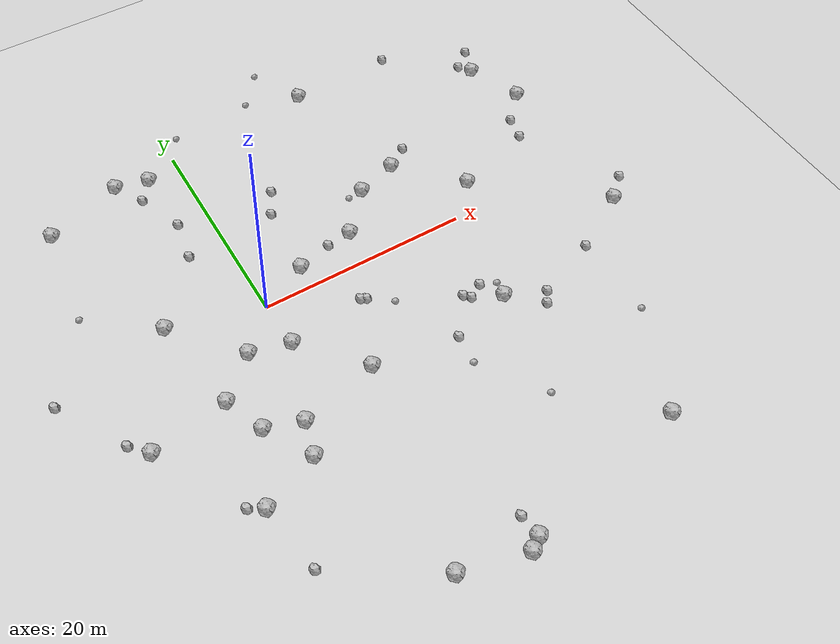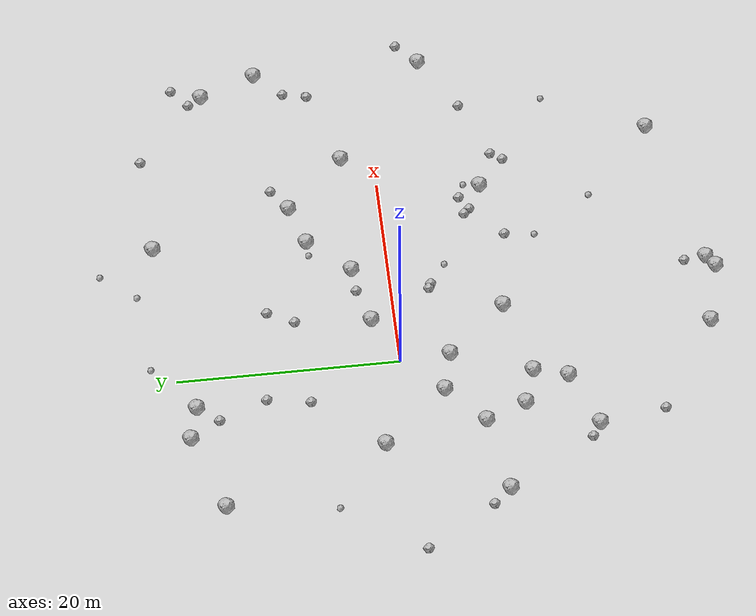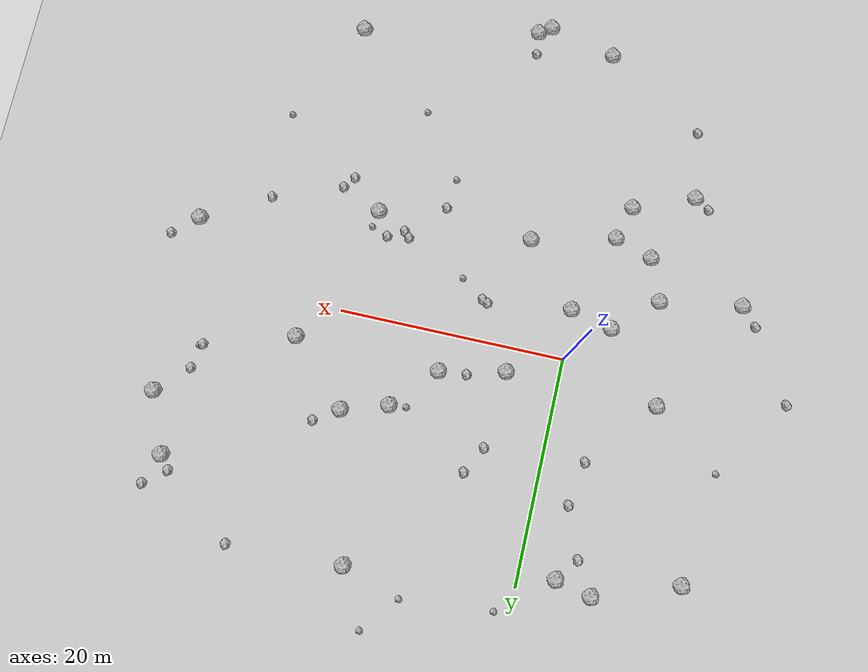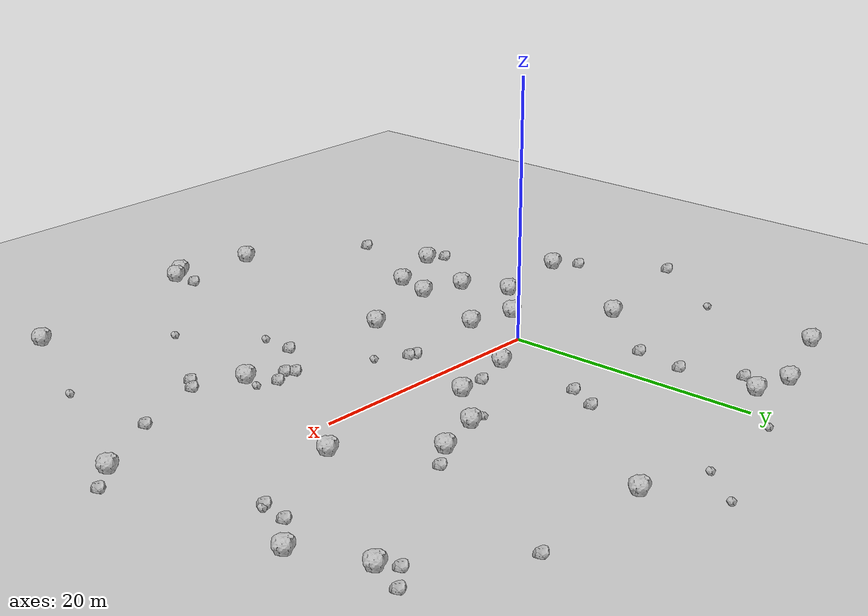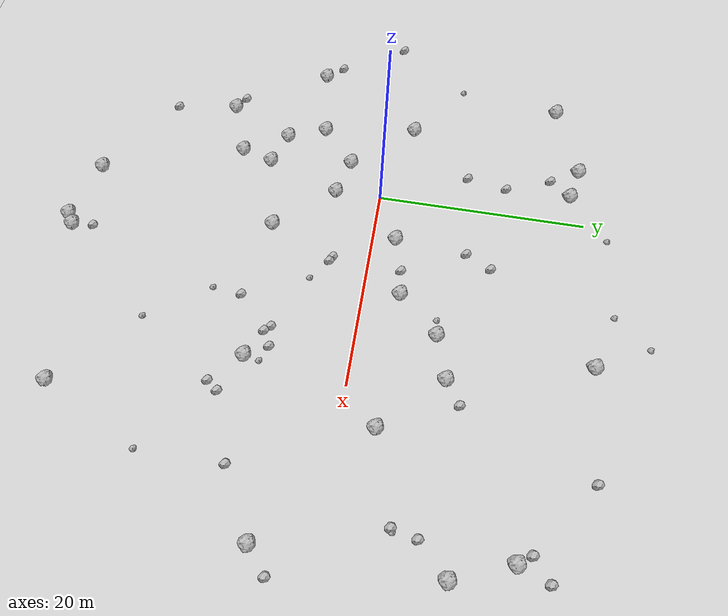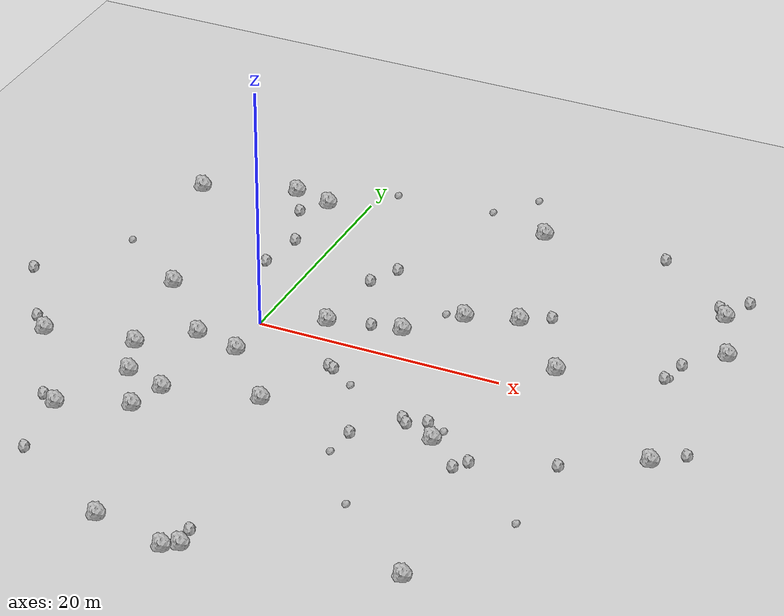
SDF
<sdf version="1.6">
 <world name="default">
  <include><uri>model://custom_ground</uri></include>
  <include><uri>model://sun</uri></include>
  <model name="rock1_0_0">
   <include><uri>model://rock1</uri><pose>7.194719679248831 -29.674038632898622 0.5 0 0 0</pose></include>
  </model>
  <model name="rock1_0_1">
   <include><uri>model://rock1</uri><pose>-14.422176284251577 -7.9926873129923734 0.5 0 0 0</pose></include>
  </model>
  <model name="rock1_0_2">
   <include><uri>model://rock1</uri><pose>4.676571307307547 2.167790002969781 0.5 0 0 0</pose></include>
  </model>
  <model name="rock1_0_3">
   <include><uri>model://rock1</uri><pose>23.968485967479744 -25.854387474371745 0.5 0 0 0</pose></include>
  </model>
  <model name="rock1_0_4">
   <include><uri>model://rock1</uri><pose>4.981956952170606 -9.829721763964287 0.5 0 0 0</pose></include>
  </model>
  <model name="rock1_0_5">
   <include><uri>model://rock1</uri><pose>-6.2589390600732635 19.214139019803923 0.5 0 0 0</pose></include>
  </model>
  <model name="rock1_0_6">
   <include><uri>model://rock1</uri><pose>-7.204883989042729 -6.803632356733328 0.5 0 0 0</pose></include>
  </model>
  <model name="rock1_0_7">
   <include><uri>model://rock1</uri><pose>23.328180813401993 3.0839254332478205 0.5 0 0 0</pose></include>
  </model>
  <model name="rock1_0_8">
   <include><uri>model://rock1</uri><pose>-2.3878402014707127 -11.582224531477333 0.5 0 0 0</pose></include>
  </model>
  <model name="rock1_0_9">
   <include><uri>model://rock1</uri><pose>34.311573584920566 10.363756497211938 0.5 0 0 0</pose></include>
  </model>
  <model name="rock1_0_10">
   <include><uri>model://rock1</uri><pose>-5.746836371098743 -10.48014084062103 0.5 0 0 0</pose></include>
  </model>
  <model name="rock1_0_11">
   <include><uri>model://rock1</uri><pose>8.290646387585578 -28.944192617482734 0.5 0 0 0</pose></include>
  </model>
  <model name="rock1_0_12">
   <include><uri>model://rock1</uri><pose>14.75129127801754 21.237211640266707 0.5 0 0 0</pose></include>
  </model>
  <model name="rock1_0_13">
   <include><uri>model://rock1</uri><pose>32.21936253638688 15.542467556911568 0.5 0 0 0</pose></include>
  </model>
  <model name="rock1_0_14">
   <include><uri>model://rock1</uri><pose>-3.2736035778547397 -14.639738002310576 0.5 0 0 0</pose></include>
  </model>
  <model name="rock1_0_15">
   <include><uri>model://rock1</uri><pose>-8.695959737747806 2.2786819494655433 0.5 0 0 0</pose></include>
  </model>
  <model name="rock1_0_16">
   <include><uri>model://rock1</uri><pose>-8.601953288199095 -16.701661458819892 0.5 0 0 0</pose></include>
  </model>
  <model name="rock1_0_17">
   <include><uri>model://rock1</uri><pose>18.778514433086897 -9.426638785557323 0.5 0 0 0</pose></include>
  </model>
  <model name="rock1_0_18">
   <include><uri>model://rock1</uri><pose>14.003405809494083 7.181382702019455 0.5 0 0 0</pose></include>
  </model>
  <model name="rock1_0_19">
   <include><uri>model://rock1</uri><pose>10.46239804766515 3.3792231676583953 0.5 0 0 0</pose></include>
  </model>
  <model name="rock1_0_20">
   <include><uri>model://rock1</uri><pose>-3.0970186812989837 18.48107607295404 0.5 0 0 0</pose></include>
  </model>
  <model name="rock1_0_21">
   <include><uri>model://rock1</uri><pose>0.21321023561882413 -4.448903414307832 0.5 0 0 0</pose></include>
  </model>
  <model name="rock1_0_22">
   <include><uri>model://rock1</uri><pose>34.27116021817934 -5.427096063636753 0.5 0 0 0</pose></include>
  </model>
  <model name="rock1_0_23">
   <include><uri>model://rock1</uri><pose>-3.5249338675828987 -3.5346537828654476 0.5 0 0 0</pose></include>
  </model>
  <model name="rock1_0_24">
   <include><uri>model://rock1</uri><pose>1.2133314672046858 -28.213583644282146 0.5 0 0 0</pose></include>
  </model>
  <model name="rock1_0_25">
   <include><uri>model://rock1</uri><pose>-13.584155241206638 16.684797038590226 0.5 0 0 0</pose></include>
  </model>
  <model name="rock1_0_26">
   <include><uri>model://rock1</uri><pose>18.051316083377166 8.461506361093392 0.5 0 0 0</pose></include>
  </model>
  <model name="rock2_0_0">
   <include><uri>model://rock2</uri><pose>36.42419056518739 -3.5402238457628563 0.3 0 0 0</pose></include>
  </model>
  <model name="rock2_0_1">
   <include><uri>model://rock2</uri><pose>8.035640314398055 -3.6407110278176162 0.3 0 0 0</pose></include>
  </model>
  <model name="rock2_0_2">
   <include><uri>model://rock2</uri><pose>5.151055909027637 9.039730423355962 0.3 0 0 0</pose></include>
  </model>
  <model name="rock2_0_3">
   <include><uri>model://rock2</uri><pose>17.55791027595358 -7.370042252667346 0.3 0 0 0</pose></include>
  </model>
  <model name="rock2_0_4">
   <include><uri>model://rock2</uri><pose>8.05395339562147 -26.95359592157008 0.3 0 0 0</pose></include>
  </model>
  <model name="rock2_0_5">
   <include><uri>model://rock2</uri><pose>22.37639274621914 -10.922244500202435 0.3 0 0 0</pose></include>
  </model>
  <model name="rock2_0_6">
   <include><uri>model://rock2</uri><pose>12.910388908239455 -11.028679555409017 0.3 0 0 0</pose></include>
  </model>
  <model name="rock2_0_7">
   <include><uri>model://rock2</uri><pose>15.625200991703743 -7.632579540214618 0.3 0 0 0</pose></include>
  </model>
  <model name="rock2_0_8">
   <include><uri>model://rock2</uri><pose>-4.678534973455431 16.555508054155375 0.3 0 0 0</pose></include>
  </model>
  <model name="rock2_0_9">
   <include><uri>model://rock2</uri><pose>16.142736114592275 -8.161453644635245 0.3 0 0 0</pose></include>
  </model>
  <model name="rock2_0_10">
   <include><uri>model://rock2</uri><pose>24.943819914010902 21.712068899198144 0.3 0 0 0</pose></include>
  </model>
  <model name="rock2_0_11">
   <include><uri>model://rock2</uri><pose>7.559575627269226 -3.4181141705615943 0.3 0 0 0</pose></include>
  </model>
  <model name="rock2_0_12">
   <include><uri>model://rock2</uri><pose>31.661226781644785 7.776885238005782 0.3 0 0 0</pose></include>
  </model>
  <model name="rock2_0_13">
   <include><uri>model://rock2</uri><pose>-7.735218159915519 -22.710735115213993 0.3 0 0 0</pose></include>
  </model>
  <model name="rock2_0_14">
   <include><uri>model://rock2</uri><pose>31.335954772637415 16.78257668452097 0.3 0 0 0</pose></include>
  </model>
  <model name="rock2_0_15">
   <include><uri>model://rock2</uri><pose>33.23463120752572 18.307701840259575 0.3 0 0 0</pose></include>
  </model>
  <model name="rock2_0_16">
   <include><uri>model://rock2</uri><pose>-9.981557040229447 -15.898148906100412 0.3 0 0 0</pose></include>
  </model>
  <model name="rock2_0_17">
   <include><uri>model://rock2</uri><pose>-19.73878746203077 -0.2105033329794317 0.3 0 0 0</pose></include>
  </model>
  <model name="rock2_0_18">
   <include><uri>model://rock2</uri><pose>-3.6234226798449782 8.363150628538257 0.3 0 0 0</pose></include>
  </model>
  <model name="rock2_0_19">
   <include><uri>model://rock2</uri><pose>-15.920933664964211 -6.39678579305642 0.3 0 0 0</pose></include>
  </model>
  <model name="rock2_0_20">
   <include><uri>model://rock2</uri><pose>20.17509957622881 9.923617281017862 0.3 0 0 0</pose></include>
  </model>
  <model name="rock2_0_21">
   <include><uri>model://rock2</uri><pose>-2.965558405603854 12.251817918860844 0.3 0 0 0</pose></include>
  </model>
  <model name="rock2_0_22">
   <include><uri>model://rock2</uri><pose>31.14385164855166 5.527359264890386 0.3 0 0 0</pose></include>
  </model>
  <model name="rock2_0_23">
   <include><uri>model://rock2</uri><pose>28.442088223103617 -8.664586513007958 0.3 0 0 0</pose></include>
  </model>
  <model name="rock2_0_24">
   <include><uri>model://rock2</uri><pose>6.409640853463337 11.451273428896158 0.3 0 0 0</pose></include>
  </model>
  <model name="rock2_0_25">
   <include><uri>model://rock2</uri><pose>21.59068494669276 -11.979053026422072 0.3 0 0 0</pose></include>
  </model>
  <model name="rock2_0_26">
   <include><uri>model://rock2</uri><pose>7.986343199693653 3.16812036107477 0.3 0 0 0</pose></include>
  </model>
  <model name="rock3_0_0">
   <include><uri>model://rock3</uri><pose>9.478546167936035 22.95317313717947 0.2 0 0 0</pose></include>
  </model>
  <model name="rock3_0_1">
   <include><uri>model://rock3</uri><pose>16.5552376184716 -19.425986937096738 0.2 0 0 0</pose></include>
  </model>
  <model name="rock3_0_2">
   <include><uri>model://rock3</uri><pose>19.02875438897602 -7.992806672472824 0.2 0 0 0</pose></include>
  </model>
  <model name="rock3_0_3">
   <include><uri>model://rock3</uri><pose>12.608289420602219 -13.806076920080383 0.2 0 0 0</pose></include>
  </model>
  <model name="rock3_0_4">
   <include><uri>model://rock3</uri><pose>28.485666251881923 -16.580912758522928 0.2 0 0 0</pose></include>
  </model>
  <model name="rock3_0_5">
   <include><uri>model://rock3</uri><pose>1.402038477645398 22.213475806207505 0.2 0 0 0</pose></include>
  </model>
  <model name="rock3_0_6">
   <include><uri>model://rock3</uri><pose>12.135283461666901 26.173096587236316 0.2 0 0 0</pose></include>
  </model>
  <model name="rock3_0_7">
   <include><uri>model://rock3</uri><pose>12.473148331528463 7.045852713589738 0.2 0 0 0</pose></include>
  </model>
  <model name="rock3_0_8">
   <include><uri>model://rock3</uri><pose>-14.834587929227292 6.8772211690601 0.2 0 0 0</pose></include>
  </model>
  <model name="rock3_0_9">
   <include><uri>model://rock3</uri><pose>31.42398272573604 5.659743660312756 0.2 0 0 0</pose></include>
  </model>
  <model name="rock3_0_10">
   <include><uri>model://rock3</uri><pose>10.1150380660923 -5.163413553202709 0.2 0 0 0</pose></include>
  </model>
 </world>
</sdf>
